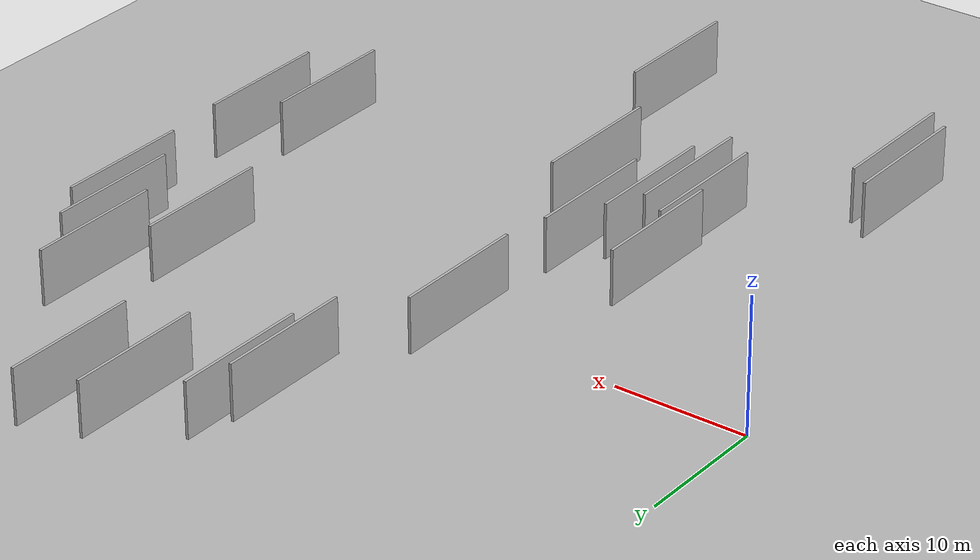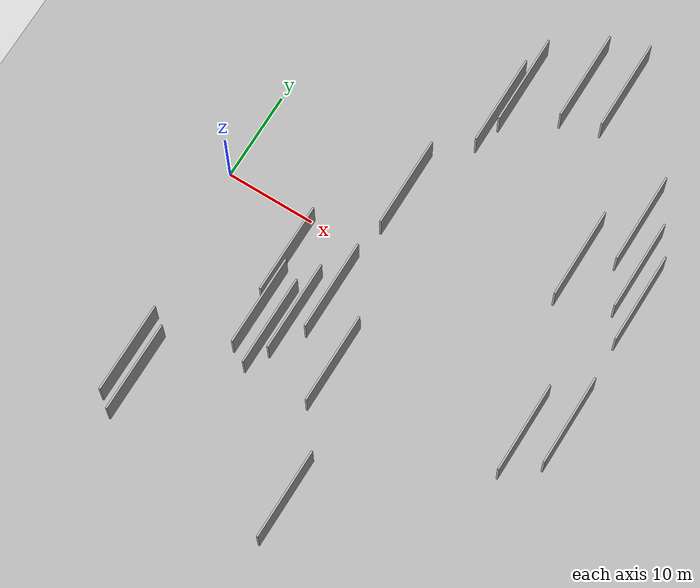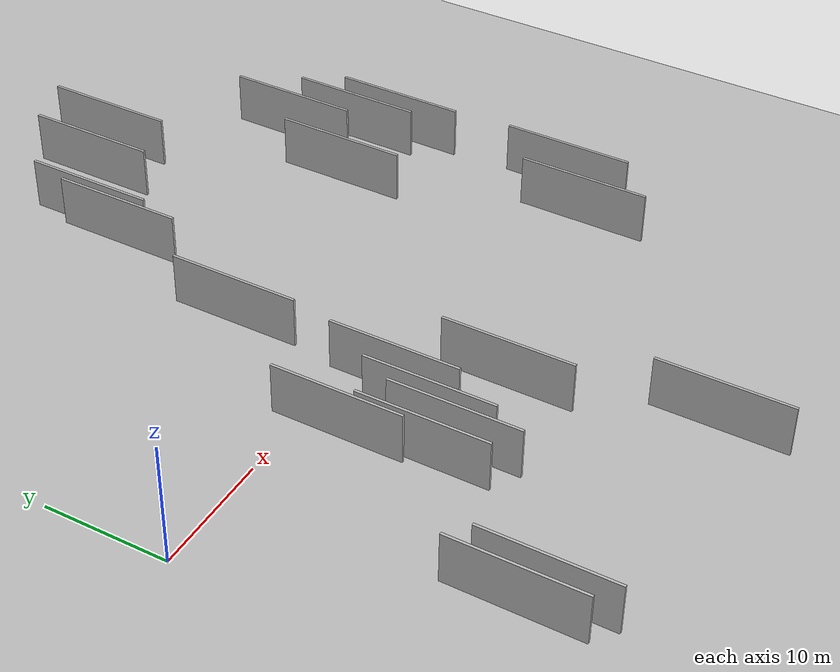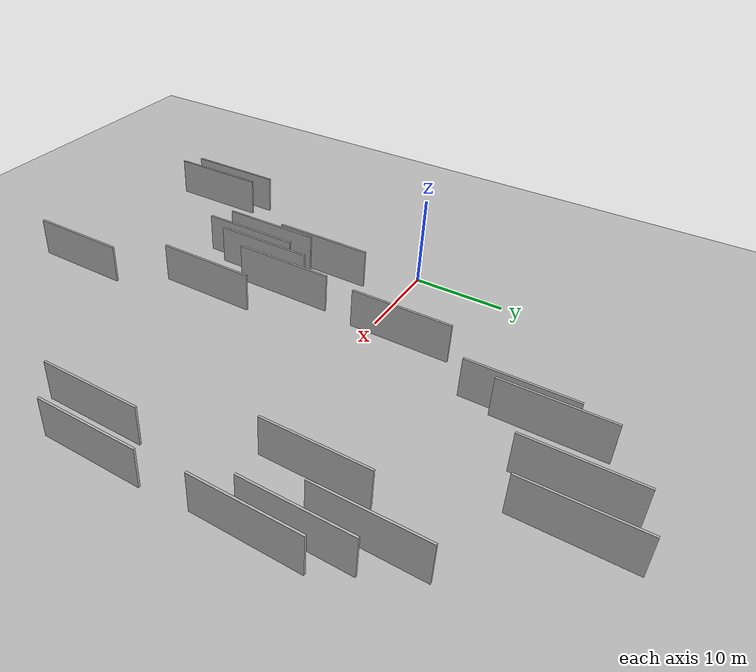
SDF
<?xml version="1.0" encoding="utf-8"?>

<sdf version="1.6">

   <world name="default">

      <gui fullscreen="0">

         <camera name="user_camera">

            <pose>-15 0 4.57585 0 0 0</pose>

            <view_controller>orbit</view_controller>

         </camera>

      </gui>

      <scene>

         <sky>

           <clouds>

             <speed>12</speed>

           </clouds>

         </sky>

         <ambient>0.4 0.4 0.4 1</ambient>

         <background>0.7 0.7 0.7 1</background>

         <shadows>1</shadows>

      </scene>

      <gravity>0 0 -9.8066</gravity>

      <magnetic_field>6e-06 2.3e-05 -4.2e-05</magnetic_field>

      <physics default="0" name="default_physics" type="ode">

         <ode>

            <solver>

               <type>quick</type>

               <iters>10</iters>

               <sor>1.0</sor>

               <use_dynamic_moi_rescaling>0</use_dynamic_moi_rescaling>

            </solver>

            <constraints>

               <cfm>0</cfm>

               <erp>0.2</erp>

               <contact_max_correcting_vel>100</contact_max_correcting_vel>

               <contact_surface_layer>0.001</contact_surface_layer>

            </constraints>

         </ode>

         <max_step_size>0.004</max_step_size>

         <real_time_factor>1</real_time_factor>

         <real_time_update_rate>250</real_time_update_rate>

      </physics>

      <light name="sun" type="directional">

         <cast_shadows>1</cast_shadows>

         <pose>0 0 10 0 0 0</pose>

         <diffuse>0.8 0.8 0.8 1</diffuse>

         <specular>0.2 0.2 0.2 1</specular>

         <attenuation>

            <range>1000</range>

            <constant>0.9</constant>

            <linear>0.01</linear>

            <quadratic>0.001</quadratic>

         </attenuation>

         <direction>-0.5 0.1 -0.9</direction>

      </light>

      <include>

         <name>ground_plane_1</name>

         <uri>model://HANNAS_ground_plane</uri>

         <pose>0 0 0  0 0 0</pose>

      </include>

      <include>

         <name>ground_plane_2</name>

         <uri>model://HANNAS_ground_plane</uri>

         <pose>100 0 0  0 0 0</pose>

      </include>

      <model name="HANNAS_wall_1">

         <static>1</static>

         <pose frame="">11.6935 -12.1341 5.0 0.000000 0.000000 1.570796</pose>

         <link name="link">

            <pose frame="">0 0 2.00 0 0 0</pose>

            <collision name="collision">

               <geometry>

                  <box>

                     <size>10.00 0.2 4.00</size>

                  </box>

               </geometry>

               <max_contacts>10</max_contacts>

               <surface>

                  <contact>

                     <ode/>

                  </contact>

                  <bounce/>

                  <friction>

                     <torsional>

                        <ode/>

                     </torsional>

                     <ode/>

                  </friction>

               </surface>

            </collision>

            <visual name="visual">

               <cast_shadows>0</cast_shadows>

               <geometry>

                  <box>

                     <size>10.00 0.2 4.00</size>

                  </box>

               </geometry>

               <material>

                  <script>

                     <uri>model://HANNAS_wall/materials/scripts</uri>

                     <uri>model://HANNAS_wall/materials/textures</uri>

                     <name>vrc/HANNAS_wall</name>

                  </script>

               </material>

            </visual>

            <self_collide>0</self_collide>

            <enable_wind>0</enable_wind>

            <kinematic>0</kinematic>

         </link>

      </model>

      <model name="HANNAS_wall_2">

         <static>1</static>

         <pose frame="">17.6268 6.1810 5.0 0.000000 0.000000 1.570796</pose>

         <link name="link">

            <pose frame="">0 0 2.00 0 0 0</pose>

            <collision name="collision">

               <geometry>

                  <box>

                     <size>10.00 0.2 4.00</size>

                  </box>

               </geometry>

               <max_contacts>10</max_contacts>

               <surface>

                  <contact>

                     <ode/>

                  </contact>

                  <bounce/>

                  <friction>

                     <torsional>

                        <ode/>

                     </torsional>

                     <ode/>

                  </friction>

               </surface>

            </collision>

            <visual name="visual">

               <cast_shadows>0</cast_shadows>

               <geometry>

                  <box>

                     <size>10.00 0.2 4.00</size>

                  </box>

               </geometry>

               <material>

                  <script>

                     <uri>model://HANNAS_wall/materials/scripts</uri>

                     <uri>model://HANNAS_wall/materials/textures</uri>

                     <name>vrc/HANNAS_wall</name>

                  </script>

               </material>

            </visual>

            <self_collide>0</self_collide>

            <enable_wind>0</enable_wind>

            <kinematic>0</kinematic>

         </link>

      </model>

      <model name="HANNAS_wall_3">

         <static>1</static>

         <pose frame="">31.2369 26.8618 5.0 0.000000 0.000000 1.570796</pose>

         <link name="link">

            <pose frame="">0 0 2.00 0 0 0</pose>

            <collision name="collision">

               <geometry>

                  <box>

                     <size>10.00 0.2 4.00</size>

                  </box>

               </geometry>

               <max_contacts>10</max_contacts>

               <surface>

                  <contact>

                     <ode/>

                  </contact>

                  <bounce/>

                  <friction>

                     <torsional>

                        <ode/>

                     </torsional>

                     <ode/>

                  </friction>

               </surface>

            </collision>

            <visual name="visual">

               <cast_shadows>0</cast_shadows>

               <geometry>

                  <box>

                     <size>10.00 0.2 4.00</size>

                  </box>

               </geometry>

               <material>

                  <script>

                     <uri>model://HANNAS_wall/materials/scripts</uri>

                     <uri>model://HANNAS_wall/materials/textures</uri>

                     <name>vrc/HANNAS_wall</name>

                  </script>

               </material>

            </visual>

            <self_collide>0</self_collide>

            <enable_wind>0</enable_wind>

            <kinematic>0</kinematic>

         </link>

      </model>

      <model name="HANNAS_wall_4">

         <static>1</static>

         <pose frame="">21.2195 18.7803 5.0 0.000000 0.000000 1.570796</pose>

         <link name="link">

            <pose frame="">0 0 2.00 0 0 0</pose>

            <collision name="collision">

               <geometry>

                  <box>

                     <size>10.00 0.2 4.00</size>

                  </box>

               </geometry>

               <max_contacts>10</max_contacts>

               <surface>

                  <contact>

                     <ode/>

                  </contact>

                  <bounce/>

                  <friction>

                     <torsional>

                        <ode/>

                     </torsional>

                     <ode/>

                  </friction>

               </surface>

            </collision>

            <visual name="visual">

               <cast_shadows>0</cast_shadows>

               <geometry>

                  <box>

                     <size>10.00 0.2 4.00</size>

                  </box>

               </geometry>

               <material>

                  <script>

                     <uri>model://HANNAS_wall/materials/scripts</uri>

                     <uri>model://HANNAS_wall/materials/textures</uri>

                     <name>vrc/HANNAS_wall</name>

                  </script>

               </material>

            </visual>

            <self_collide>0</self_collide>

            <enable_wind>0</enable_wind>

            <kinematic>0</kinematic>

         </link>

      </model>

      <model name="HANNAS_wall_5">

         <static>1</static>

         <pose frame="">11.1472 -6.0909 5.0 0.000000 0.000000 1.570796</pose>

         <link name="link">

            <pose frame="">0 0 2.00 0 0 0</pose>

            <collision name="collision">

               <geometry>

                  <box>

                     <size>10.00 0.2 4.00</size>

                  </box>

               </geometry>

               <max_contacts>10</max_contacts>

               <surface>

                  <contact>

                     <ode/>

                  </contact>

                  <bounce/>

                  <friction>

                     <torsional>

                        <ode/>

                     </torsional>

                     <ode/>

                  </friction>

               </surface>

            </collision>

            <visual name="visual">

               <cast_shadows>0</cast_shadows>

               <geometry>

                  <box>

                     <size>10.00 0.2 4.00</size>

                  </box>

               </geometry>

               <material>

                  <script>

                     <uri>model://HANNAS_wall/materials/scripts</uri>

                     <uri>model://HANNAS_wall/materials/textures</uri>

                     <name>vrc/HANNAS_wall</name>

                  </script>

               </material>

            </visual>

            <self_collide>0</self_collide>

            <enable_wind>0</enable_wind>

            <kinematic>0</kinematic>

         </link>

      </model>

      <model name="HANNAS_wall_6">

         <static>1</static>

         <pose frame="">27.1706 25.5830 5.0 0.000000 0.000000 1.570796</pose>

         <link name="link">

            <pose frame="">0 0 2.00 0 0 0</pose>

            <collision name="collision">

               <geometry>

                  <box>

                     <size>10.00 0.2 4.00</size>

                  </box>

               </geometry>

               <max_contacts>10</max_contacts>

               <surface>

                  <contact>

                     <ode/>

                  </contact>

                  <bounce/>

                  <friction>

                     <torsional>

                        <ode/>

                     </torsional>

                     <ode/>

                  </friction>

               </surface>

            </collision>

            <visual name="visual">

               <cast_shadows>0</cast_shadows>

               <geometry>

                  <box>

                     <size>10.00 0.2 4.00</size>

                  </box>

               </geometry>

               <material>

                  <script>

                     <uri>model://HANNAS_wall/materials/scripts</uri>

                     <uri>model://HANNAS_wall/materials/textures</uri>

                     <name>vrc/HANNAS_wall</name>

                  </script>

               </material>

            </visual>

            <self_collide>0</self_collide>

            <enable_wind>0</enable_wind>

            <kinematic>0</kinematic>

         </link>

      </model>

      <model name="HANNAS_wall_7">

         <static>1</static>

         <pose frame="">4.9014 -24.3861 5.0 0.000000 0.000000 1.570796</pose>

         <link name="link">

            <pose frame="">0 0 2.00 0 0 0</pose>

            <collision name="collision">

               <geometry>

                  <box>

                     <size>10.00 0.2 4.00</size>

                  </box>

               </geometry>

               <max_contacts>10</max_contacts>

               <surface>

                  <contact>

                     <ode/>

                  </contact>

                  <bounce/>

                  <friction>

                     <torsional>

                        <ode/>

                     </torsional>

                     <ode/>

                  </friction>

               </surface>

            </collision>

            <visual name="visual">

               <cast_shadows>0</cast_shadows>

               <geometry>

                  <box>

                     <size>10.00 0.2 4.00</size>

                  </box>

               </geometry>

               <material>

                  <script>

                     <uri>model://HANNAS_wall/materials/scripts</uri>

                     <uri>model://HANNAS_wall/materials/textures</uri>

                     <name>vrc/HANNAS_wall</name>

                  </script>

               </material>

            </visual>

            <self_collide>0</self_collide>

            <enable_wind>0</enable_wind>

            <kinematic>0</kinematic>

         </link>

      </model>

      <model name="HANNAS_wall_8">

         <static>1</static>

         <pose frame="">42.0584 10.8622 5.0 0.000000 0.000000 1.570796</pose>

         <link name="link">

            <pose frame="">0 0 2.00 0 0 0</pose>

            <collision name="collision">

               <geometry>

                  <box>

                     <size>10.00 0.2 4.00</size>

                  </box>

               </geometry>

               <max_contacts>10</max_contacts>

               <surface>

                  <contact>

                     <ode/>

                  </contact>

                  <bounce/>

                  <friction>

                     <torsional>

                        <ode/>

                     </torsional>

                     <ode/>

                  </friction>

               </surface>

            </collision>

            <visual name="visual">

               <cast_shadows>0</cast_shadows>

               <geometry>

                  <box>

                     <size>10.00 0.2 4.00</size>

                  </box>

               </geometry>

               <material>

                  <script>

                     <uri>model://HANNAS_wall/materials/scripts</uri>

                     <uri>model://HANNAS_wall/materials/textures</uri>

                     <name>vrc/HANNAS_wall</name>

                  </script>

               </material>

            </visual>

            <self_collide>0</self_collide>

            <enable_wind>0</enable_wind>

            <kinematic>0</kinematic>

         </link>

      </model>

      <model name="HANNAS_wall_9">

         <static>1</static>

         <pose frame="">39.7345 15.2526 5.0 0.000000 0.000000 1.570796</pose>

         <link name="link">

            <pose frame="">0 0 2.00 0 0 0</pose>

            <collision name="collision">

               <geometry>

                  <box>

                     <size>10.00 0.2 4.00</size>

                  </box>

               </geometry>

               <max_contacts>10</max_contacts>

               <surface>

                  <contact>

                     <ode/>

                  </contact>

                  <bounce/>

                  <friction>

                     <torsional>

                        <ode/>

                     </torsional>

                     <ode/>

                  </friction>

               </surface>

            </collision>

            <visual name="visual">

               <cast_shadows>0</cast_shadows>

               <geometry>

                  <box>

                     <size>10.00 0.2 4.00</size>

                  </box>

               </geometry>

               <material>

                  <script>

                     <uri>model://HANNAS_wall/materials/scripts</uri>

                     <uri>model://HANNAS_wall/materials/textures</uri>

                     <name>vrc/HANNAS_wall</name>

                  </script>

               </material>

            </visual>

            <self_collide>0</self_collide>

            <enable_wind>0</enable_wind>

            <kinematic>0</kinematic>

         </link>

      </model>

      <model name="HANNAS_wall_10">

         <static>1</static>

         <pose frame="">44.1961 -6.5715 5.0 0.000000 0.000000 1.570796</pose>

         <link name="link">

            <pose frame="">0 0 2.00 0 0 0</pose>

            <collision name="collision">

               <geometry>

                  <box>

                     <size>10.00 0.2 4.00</size>

                  </box>

               </geometry>

               <max_contacts>10</max_contacts>

               <surface>

                  <contact>

                     <ode/>

                  </contact>

                  <bounce/>

                  <friction>

                     <torsional>

                        <ode/>

                     </torsional>

                     <ode/>

                  </friction>

               </surface>

            </collision>

            <visual name="visual">

               <cast_shadows>0</cast_shadows>

               <geometry>

                  <box>

                     <size>10.00 0.2 4.00</size>

                  </box>

               </geometry>

               <material>

                  <script>

                     <uri>model://HANNAS_wall/materials/scripts</uri>

                     <uri>model://HANNAS_wall/materials/textures</uri>

                     <name>vrc/HANNAS_wall</name>

                  </script>

               </material>

            </visual>

            <self_collide>0</self_collide>

            <enable_wind>0</enable_wind>

            <kinematic>0</kinematic>

         </link>

      </model>

      <model name="HANNAS_wall_11">

         <static>1</static>

         <pose frame="">21.1061 -13.3948 5.0 0.000000 0.000000 1.570796</pose>

         <link name="link">

            <pose frame="">0 0 2.00 0 0 0</pose>

            <collision name="collision">

               <geometry>

                  <box>

                     <size>10.00 0.2 4.00</size>

                  </box>

               </geometry>

               <max_contacts>10</max_contacts>

               <surface>

                  <contact>

                     <ode/>

                  </contact>

                  <bounce/>

                  <friction>

                     <torsional>

                        <ode/>

                     </torsional>

                     <ode/>

                  </friction>

               </surface>

            </collision>

            <visual name="visual">

               <cast_shadows>0</cast_shadows>

               <geometry>

                  <box>

                     <size>10.00 0.2 4.00</size>

                  </box>

               </geometry>

               <material>

                  <script>

                     <uri>model://HANNAS_wall/materials/scripts</uri>

                     <uri>model://HANNAS_wall/materials/textures</uri>

                     <name>vrc/HANNAS_wall</name>

                  </script>

               </material>

            </visual>

            <self_collide>0</self_collide>

            <enable_wind>0</enable_wind>

            <kinematic>0</kinematic>

         </link>

      </model>

      <model name="HANNAS_wall_12">

         <static>1</static>

         <pose frame="">24.3919 -27.4640 5.0 0.000000 0.000000 1.570796</pose>

         <link name="link">

            <pose frame="">0 0 2.00 0 0 0</pose>

            <collision name="collision">

               <geometry>

                  <box>

                     <size>10.00 0.2 4.00</size>

                  </box>

               </geometry>

               <max_contacts>10</max_contacts>

               <surface>

                  <contact>

                     <ode/>

                  </contact>

                  <bounce/>

                  <friction>

                     <torsional>

                        <ode/>

                     </torsional>

                     <ode/>

                  </friction>

               </surface>

            </collision>

            <visual name="visual">

               <cast_shadows>0</cast_shadows>

               <geometry>

                  <box>

                     <size>10.00 0.2 4.00</size>

                  </box>

               </geometry>

               <material>

                  <script>

                     <uri>model://HANNAS_wall/materials/scripts</uri>

                     <uri>model://HANNAS_wall/materials/textures</uri>

                     <name>vrc/HANNAS_wall</name>

                  </script>

               </material>

            </visual>

            <self_collide>0</self_collide>

            <enable_wind>0</enable_wind>

            <kinematic>0</kinematic>

         </link>

      </model>

      <model name="HANNAS_wall_13">

         <static>1</static>

         <pose frame="">40.7871 -9.5251 5.0 0.000000 0.000000 1.570796</pose>

         <link name="link">

            <pose frame="">0 0 2.00 0 0 0</pose>

            <collision name="collision">

               <geometry>

                  <box>

                     <size>10.00 0.2 4.00</size>

                  </box>

               </geometry>

               <max_contacts>10</max_contacts>

               <surface>

                  <contact>

                     <ode/>

                  </contact>

                  <bounce/>

                  <friction>

                     <torsional>

                        <ode/>

                     </torsional>

                     <ode/>

                  </friction>

               </surface>

            </collision>

            <visual name="visual">

               <cast_shadows>0</cast_shadows>

               <geometry>

                  <box>

                     <size>10.00 0.2 4.00</size>

                  </box>

               </geometry>

               <material>

                  <script>

                     <uri>model://HANNAS_wall/materials/scripts</uri>

                     <uri>model://HANNAS_wall/materials/textures</uri>

                     <name>vrc/HANNAS_wall</name>

                  </script>

               </material>

            </visual>

            <self_collide>0</self_collide>

            <enable_wind>0</enable_wind>

            <kinematic>0</kinematic>

         </link>

      </model>

      <model name="HANNAS_wall_14">

         <static>1</static>

         <pose frame="">43.8531 7.9176 5.0 0.000000 0.000000 1.570796</pose>

         <link name="link">

            <pose frame="">0 0 2.00 0 0 0</pose>

            <collision name="collision">

               <geometry>

                  <box>

                     <size>10.00 0.2 4.00</size>

                  </box>

               </geometry>

               <max_contacts>10</max_contacts>

               <surface>

                  <contact>

                     <ode/>

                  </contact>

                  <bounce/>

                  <friction>

                     <torsional>

                        <ode/>

                     </torsional>

                     <ode/>

                  </friction>

               </surface>

            </collision>

            <visual name="visual">

               <cast_shadows>0</cast_shadows>

               <geometry>

                  <box>

                     <size>10.00 0.2 4.00</size>

                  </box>

               </geometry>

               <material>

                  <script>

                     <uri>model://HANNAS_wall/materials/scripts</uri>

                     <uri>model://HANNAS_wall/materials/textures</uri>

                     <name>vrc/HANNAS_wall</name>

                  </script>

               </material>

            </visual>

            <self_collide>0</self_collide>

            <enable_wind>0</enable_wind>

            <kinematic>0</kinematic>

         </link>

      </model>

      <model name="HANNAS_wall_15">

         <static>1</static>

         <pose frame="">15.0010 -10.7951 5.0 0.000000 0.000000 1.570796</pose>

         <link name="link">

            <pose frame="">0 0 2.00 0 0 0</pose>

            <collision name="collision">

               <geometry>

                  <box>

                     <size>10.00 0.2 4.00</size>

                  </box>

               </geometry>

               <max_contacts>10</max_contacts>

               <surface>

                  <contact>

                     <ode/>

                  </contact>

                  <bounce/>

                  <friction>

                     <torsional>

                        <ode/>

                     </torsional>

                     <ode/>

                  </friction>

               </surface>

            </collision>

            <visual name="visual">

               <cast_shadows>0</cast_shadows>

               <geometry>

                  <box>

                     <size>10.00 0.2 4.00</size>

                  </box>

               </geometry>

               <material>

                  <script>

                     <uri>model://HANNAS_wall/materials/scripts</uri>

                     <uri>model://HANNAS_wall/materials/textures</uri>

                     <name>vrc/HANNAS_wall</name>

                  </script>

               </material>

            </visual>

            <self_collide>0</self_collide>

            <enable_wind>0</enable_wind>

            <kinematic>0</kinematic>

         </link>

      </model>

      <model name="HANNAS_wall_16">

         <static>1</static>

         <pose frame="">22.0419 21.9297 5.0 0.000000 0.000000 1.570796</pose>

         <link name="link">

            <pose frame="">0 0 2.00 0 0 0</pose>

            <collision name="collision">

               <geometry>

                  <box>

                     <size>10.00 0.2 4.00</size>

                  </box>

               </geometry>

               <max_contacts>10</max_contacts>

               <surface>

                  <contact>

                     <ode/>

                  </contact>

                  <bounce/>

                  <friction>

                     <torsional>

                        <ode/>

                     </torsional>

                     <ode/>

                  </friction>

               </surface>

            </collision>

            <visual name="visual">

               <cast_shadows>0</cast_shadows>

               <geometry>

                  <box>

                     <size>10.00 0.2 4.00</size>

                  </box>

               </geometry>

               <material>

                  <script>

                     <uri>model://HANNAS_wall/materials/scripts</uri>

                     <uri>model://HANNAS_wall/materials/textures</uri>

                     <name>vrc/HANNAS_wall</name>

                  </script>

               </material>

            </visual>

            <self_collide>0</self_collide>

            <enable_wind>0</enable_wind>

            <kinematic>0</kinematic>

         </link>

      </model>

      <model name="HANNAS_wall_17">

         <static>1</static>

         <pose frame="">16.9895 -7.0257 5.0 0.000000 0.000000 1.570796</pose>

         <link name="link">

            <pose frame="">0 0 2.00 0 0 0</pose>

            <collision name="collision">

               <geometry>

                  <box>

                     <size>10.00 0.2 4.00</size>

                  </box>

               </geometry>

               <max_contacts>10</max_contacts>

               <surface>

                  <contact>

                     <ode/>

                  </contact>

                  <bounce/>

                  <friction>

                     <torsional>

                        <ode/>

                     </torsional>

                     <ode/>

                  </friction>

               </surface>

            </collision>

            <visual name="visual">

               <cast_shadows>0</cast_shadows>

               <geometry>

                  <box>

                     <size>10.00 0.2 4.00</size>

                  </box>

               </geometry>

               <material>

                  <script>

                     <uri>model://HANNAS_wall/materials/scripts</uri>

                     <uri>model://HANNAS_wall/materials/textures</uri>

                     <name>vrc/HANNAS_wall</name>

                  </script>

               </material>

            </visual>

            <self_collide>0</self_collide>

            <enable_wind>0</enable_wind>

            <kinematic>0</kinematic>

         </link>

      </model>

      <model name="HANNAS_wall_18">

         <static>1</static>

         <pose frame="">36.3457 8.8160 5.0 0.000000 0.000000 1.570796</pose>

         <link name="link">

            <pose frame="">0 0 2.00 0 0 0</pose>

            <collision name="collision">

               <geometry>

                  <box>

                     <size>10.00 0.2 4.00</size>

                  </box>

               </geometry>

               <max_contacts>10</max_contacts>

               <surface>

                  <contact>

                     <ode/>

                  </contact>

                  <bounce/>

                  <friction>

                     <torsional>

                        <ode/>

                     </torsional>

                     <ode/>

                  </friction>

               </surface>

            </collision>

            <visual name="visual">

               <cast_shadows>0</cast_shadows>

               <geometry>

                  <box>

                     <size>10.00 0.2 4.00</size>

                  </box>

               </geometry>

               <material>

                  <script>

                     <uri>model://HANNAS_wall/materials/scripts</uri>

                     <uri>model://HANNAS_wall/materials/textures</uri>

                     <name>vrc/HANNAS_wall</name>

                  </script>

               </material>

            </visual>

            <self_collide>0</self_collide>

            <enable_wind>0</enable_wind>

            <kinematic>0</kinematic>

         </link>

      </model>

      <model name="HANNAS_wall_19">

         <static>1</static>

         <pose frame="">3.2585 -23.0960 5.0 0.000000 0.000000 1.570796</pose>

         <link name="link">

            <pose frame="">0 0 2.00 0 0 0</pose>

            <collision name="collision">

               <geometry>

                  <box>

                     <size>10.00 0.2 4.00</size>

                  </box>

               </geometry>

               <max_contacts>10</max_contacts>

               <surface>

                  <contact>

                     <ode/>

                  </contact>

                  <bounce/>

                  <friction>

                     <torsional>

                        <ode/>

                     </torsional>

                     <ode/>

                  </friction>

               </surface>

            </collision>

            <visual name="visual">

               <cast_shadows>0</cast_shadows>

               <geometry>

                  <box>

                     <size>10.00 0.2 4.00</size>

                  </box>

               </geometry>

               <material>

                  <script>

                     <uri>model://HANNAS_wall/materials/scripts</uri>

                     <uri>model://HANNAS_wall/materials/textures</uri>

                     <name>vrc/HANNAS_wall</name>

                  </script>

               </material>

            </visual>

            <self_collide>0</self_collide>

            <enable_wind>0</enable_wind>

            <kinematic>0</kinematic>

         </link>

      </model>

      <model name="HANNAS_wall_20">

         <static>1</static>

         <pose frame="">13.7394 -13.3497 5.0 0.000000 0.000000 1.570796</pose>

         <link name="link">

            <pose frame="">0 0 2.00 0 0 0</pose>

            <collision name="collision">

               <geometry>

                  <box>

                     <size>10.00 0.2 4.00</size>

                  </box>

               </geometry>

               <max_contacts>10</max_contacts>

               <surface>

                  <contact>

                     <ode/>

                  </contact>

                  <bounce/>

                  <friction>

                     <torsional>

                        <ode/>

                     </torsional>

                     <ode/>

                  </friction>

               </surface>

            </collision>

            <visual name="visual">

               <cast_shadows>0</cast_shadows>

               <geometry>

                  <box>

                     <size>10.00 0.2 4.00</size>

                  </box>

               </geometry>

               <material>

                  <script>

                     <uri>model://HANNAS_wall/materials/scripts</uri>

                     <uri>model://HANNAS_wall/materials/textures</uri>

                     <name>vrc/HANNAS_wall</name>

                  </script>

               </material>

            </visual>

            <self_collide>0</self_collide>

            <enable_wind>0</enable_wind>

            <kinematic>0</kinematic>

         </link>

      </model>

   </world>

</sdf>

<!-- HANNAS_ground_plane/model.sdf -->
<sdf version="1.4">
<model name="HANNAS_ground_plane">
  <static>true</static>
    <link name="link">
      <collision name="collision">
        <geometry>
          <plane>
            <normal>0 0 1</normal>
            <size>1000 1000</size>
          </plane>
        </geometry>
        <surface>
          <friction>
            <ode>
              <mu>100</mu>
              <mu2>50</mu2>
            </ode>
          </friction>
        </surface>
      </collision>
      <visual name="visual">
        <cast_shadows>false</cast_shadows>
        <geometry>
          <plane>
            <normal>0 0 1</normal>
            <size>1000 1000</size>
          </plane>
        </geometry>
        <material>
          <script>
            <uri>model://HANNAS_ground_plane/materials/scripts/HANNAS_ground_plane.material</uri>
	    <uri>model://HANNAS_ground_plane/materials/textures</uri>
            <name>HANNASGroundPlane/Image</name>
          </script>
        </material>
      </visual>
    </link>
  </model>
</sdf>
